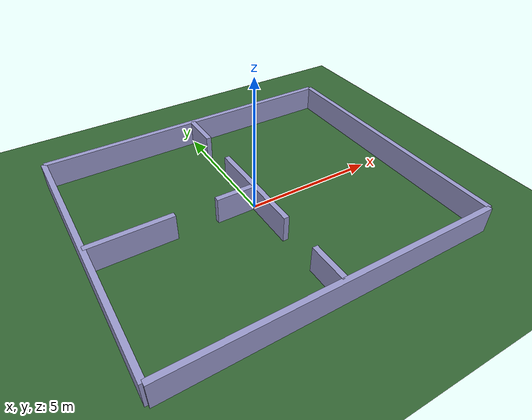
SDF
<?xml version="1.0"?>
<sdf version="1.6">
  <world name="guide_house">

    <plugin filename="gz-sim-physics-system" name="gz::sim::systems::Physics"></plugin>
    <plugin filename="gz-sim-user-commands-system" name="gz::sim::systems::UserCommands"></plugin>
    <plugin filename="gz-sim-scene-broadcaster-system" name="gz::sim::systems::SceneBroadcaster"></plugin>
    <plugin filename="gz-sim-sensors-system" name="gz::sim::systems::Sensors">
      <render_engine>ogre2</render_engine>
    </plugin>
    <plugin filename="gz-sim-imu-system" name="gz::sim::systems::Imu"></plugin>

    <light name="sun" type="directional">
      <cast_shadows>false</cast_shadows>
      <pose>0 0 10 0 0 0</pose>
      <diffuse>1 1 1 1</diffuse>
      <specular>0.3 0.3 0.3 1</specular>
      <direction>0 0 -1</direction>
    </light>

    <model name="ground_plane">
      <static>true</static>
      <link name="link">
        <collision name="collision">
          <geometry><plane><normal>0 0 1</normal><size>100 100</size></plane></geometry>
        </collision>
        <visual name="visual">
          <geometry><plane><normal>0 0 1</normal><size>100 100</size></plane></geometry>
          <material>
            <ambient>0.2 0.4 0.2 1</ambient>
            <diffuse>0.2 0.4 0.2 1</diffuse>
          </material>
        </visual>
      </link>
    </model>

    <gui fullscreen='0'>
      <plugin filename="MinimalScene" name="3D View">
        <gz-gui>
          <title>3D View</title>
          <property type="bool" key="showTitleBar">false</property>
          <property type="string" key="state">docked</property>
        </gz-gui>
        <engine>ogre2</engine>
        <scene>scene</scene>
        <ambient_light>0.4 0.4 0.4</ambient_light>
        <background_color>0.2 0.2 0.2</background_color>
        <camera_pose>0 0 22 0 1.5707963 1.5707963</camera_pose>
      </plugin>
      <plugin filename="GzSceneManager" name="Scene Manager">
        <gz-gui>
          <property key="resizable" type="bool">false</property>
          <property key="width" type="double">5</property>
          <property key="height" type="double">5</property>
          <property key="state" type="string">floating</property>
          <property key="showTitleBar" type="bool">false</property>
        </gz-gui>
      </plugin>
      <plugin filename="InteractiveViewControl" name="Interactive view control">
        <gz-gui>
          <property key="resizable" type="bool">false</property>
          <property key="width" type="double">5</property>
          <property key="height" type="double">5</property>
          <property key="state" type="string">floating</property>
          <property key="showTitleBar" type="bool">false</property>
        </gz-gui>
      </plugin>
      <plugin filename="WorldControl" name="World control">
        <gz-gui>
          <title>World control</title>
          <property type="bool" key="showTitleBar">false</property>
          <property type="bool" key="resizable">false</property>
          <property type="double" key="height">72</property>
          <property type="double" key="z">1</property>
          <property type="string" key="state">floating</property>
          <anchors target="3D View">
            <line own="left" target="left"/>
            <line own="bottom" target="bottom"/>
          </anchors>
        </gz-gui>
        <play_pause>true</play_pause>
        <step>true</step>
        <start_paused>true</start_paused>
        <use_event>true</use_event>
      </plugin>
      <plugin filename="EntityTree" name="Entity tree">
        <gz-gui>
          <property type="bool" key="showTitleBar">false</property>
          <property type="string" key="state">docked</property>
        </gz-gui>
      </plugin>
    </gui>

    <physics type="ode">
      <real_time_update_rate>1000.0</real_time_update_rate>
      <max_step_size>0.001</max_step_size>
      <real_time_factor>1</real_time_factor>
      <ode>
        <solver>
          <type>quick</type>
          <iters>150</iters>
          <sor>1.400000</sor>
        </solver>
        <constraints>
          <cfm>0.00001</cfm>
          <erp>0.2</erp>
          <contact_max_correcting_vel>2000.000000</contact_max_correcting_vel>
          <contact_surface_layer>0.01000</contact_surface_layer>
        </constraints>
      </ode>
    </physics>

    <!-- HOUSE LAYOUT (top-down view):                            -->
    <!--   The house has 3 rooms. The large Living Room takes up  -->
    <!--   the entire right half. The left half is split in two:  -->
    <!--   Bedroom on top, Office on bottom.                      -->
    <!--   Bedroom     (x: -6 to 0, y:  0 to 5)  -- top left      -->
    <!--   Office      (x: -6 to 0, y: -5 to 0)  -- bottom left   -->
    <!--   Living Room (x:  0 to 6, y: -5 to 5)  -- full right    -->
    <!--   Doorways (open gaps in the walls):                     -->
    <!--     Bedroom <-> Living Room: y= 2.0 to 3.5  (x=0 wall)   -->
    <!--     Office  <-> Living Room: y=-3.5 to -2.0 (x=0 wall)   -->
    <!--     Bedroom <-> Office:      x=-3.0 to -1.5 (y=0 wall)   -->

    <!-- OUTER WALLS -- enclose the full 12x10 house footprint -->
    <model name="wall_bottom"><static>true</static><pose>0 -5 0.5 0 0 0</pose>
      <link name="link">
        <collision name="c"><geometry><box><size>12 0.2 1</size></box></geometry></collision>
        <visual name="v"><geometry><box><size>12 0.2 1</size></box></geometry>
          <material><ambient>0.6 0.6 0.8 1</ambient><diffuse>0.6 0.6 0.8 1</diffuse></material>
        </visual>
      </link>
    </model>

    <model name="wall_top"><static>true</static><pose>0 5 0.5 0 0 0</pose>
      <link name="link">
        <collision name="c"><geometry><box><size>12 0.2 1</size></box></geometry></collision>
        <visual name="v"><geometry><box><size>12 0.2 1</size></box></geometry>
          <material><ambient>0.6 0.6 0.8 1</ambient><diffuse>0.6 0.6 0.8 1</diffuse></material>
        </visual>
      </link>
    </model>

    <model name="wall_left"><static>true</static><pose>-6 0 0.5 0 0 0</pose>
      <link name="link">
        <collision name="c"><geometry><box><size>0.2 10 1</size></box></geometry></collision>
        <visual name="v"><geometry><box><size>0.2 10 1</size></box></geometry>
          <material><ambient>0.6 0.6 0.8 1</ambient><diffuse>0.6 0.6 0.8 1</diffuse></material>
        </visual>
      </link>
    </model>

    <model name="wall_right"><static>true</static><pose>6 0 0.5 0 0 0</pose>
      <link name="link">
        <collision name="c"><geometry><box><size>0.2 10 1</size></box></geometry></collision>
        <visual name="v"><geometry><box><size>0.2 10 1</size></box></geometry>
          <material><ambient>0.6 0.6 0.8 1</ambient><diffuse>0.6 0.6 0.8 1</diffuse></material>
        </visual>
      </link>
    </model>

    <!-- VERTICAL DIVIDER at x=0: separates the two left rooms from the Living Room -->
    <!-- Split into 3 segments to leave gaps for the two doorways -->
    <!-- Top segment: y=3.5 to y=5 (above the Bedroom/Living Room doorway) -->
    <model name="divider_vert_top"><static>true</static><pose>0 4.25 0.5 0 0 0</pose>
      <link name="link">
        <collision name="c"><geometry><box><size>0.2 1.5 1</size></box></geometry></collision>
        <visual name="v"><geometry><box><size>0.2 1.5 1</size></box></geometry>
          <material><ambient>0.6 0.6 0.8 1</ambient><diffuse>0.6 0.6 0.8 1</diffuse></material>
        </visual>
      </link>
    </model>

    <!-- Mid segment: y=-2.0 to y=2.0 (solid wall between the two doorways) -->
    <model name="divider_vert_mid"><static>true</static><pose>0 0 0.5 0 0 0</pose>
      <link name="link">
        <collision name="c"><geometry><box><size>0.2 4.0 1</size></box></geometry></collision>
        <visual name="v"><geometry><box><size>0.2 4.0 1</size></box></geometry>
          <material><ambient>0.6 0.6 0.8 1</ambient><diffuse>0.6 0.6 0.8 1</diffuse></material>
        </visual>
      </link>
    </model>

    <!-- Bottom segment: y=-5 to y=-3.5 (below the Office/Living Room doorway) -->
    <model name="divider_vert_bottom"><static>true</static><pose>0 -4.25 0.5 0 0 0</pose>
      <link name="link">
        <collision name="c"><geometry><box><size>0.2 1.5 1</size></box></geometry></collision>
        <visual name="v"><geometry><box><size>0.2 1.5 1</size></box></geometry>
          <material><ambient>0.6 0.6 0.8 1</ambient><diffuse>0.6 0.6 0.8 1</diffuse></material>
        </visual>
      </link>
    </model>

    <!-- HORIZONTAL DIVIDER at y=0: splits the left half into Bedroom (top) and Office (bottom) -->
    <!-- Split into 2 segments to leave a gap for the Bedroom/Office doorway -->
    <!-- Left segment: x=-6 to x=-3.0 (left of the doorway opening) -->
    <model name="divider_horiz_left"><static>true</static><pose>-4.5 0 0.5 0 0 0</pose>
      <link name="link">
        <collision name="c"><geometry><box><size>3.0 0.2 1</size></box></geometry></collision>
        <visual name="v"><geometry><box><size>3.0 0.2 1</size></box></geometry>
          <material><ambient>0.6 0.6 0.8 1</ambient><diffuse>0.6 0.6 0.8 1</diffuse></material>
        </visual>
      </link>
    </model>

    <!-- Right segment: x=-1.5 to x=0 (right of doorway) -->
    <model name="divider_horiz_right"><static>true</static><pose>-0.75 0 0.5 0 0 0</pose>
      <link name="link">
        <collision name="c"><geometry><box><size>1.5 0.2 1</size></box></geometry></collision>
        <visual name="v"><geometry><box><size>1.5 0.2 1</size></box></geometry>
          <material><ambient>0.6 0.6 0.8 1</ambient><diffuse>0.6 0.6 0.8 1</diffuse></material>
        </visual>
      </link>
    </model>

  </world>
</sdf>
